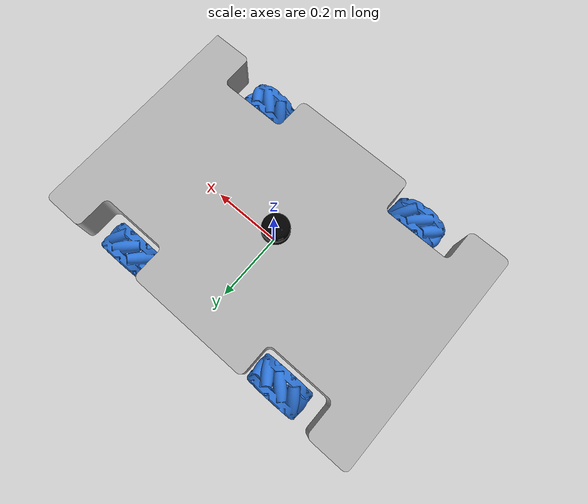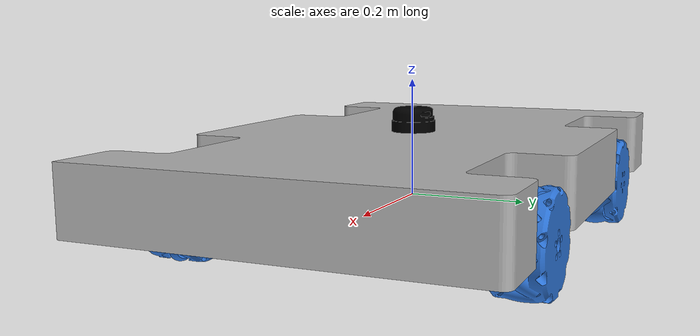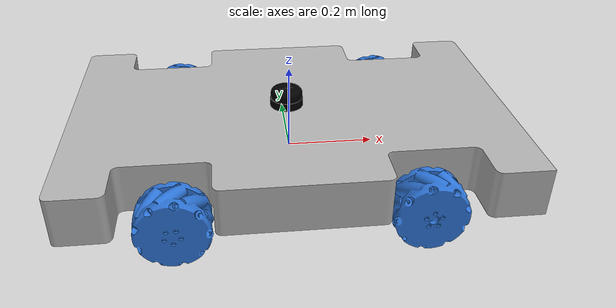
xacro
<?xml version="1.0"?>
<robot name="amr" xmlns:xacro="http://ros.org/wiki/xacro">

    <xacro:include filename="$(find amr_description)/urdf/base.xacro"/>
    <xacro:include filename="$(find amr_description)/urdf/mecanum_wheel.xacro"/>
    <xacro:include filename="$(find amr_description)/urdf/lidar.xacro"/>

    <xacro:property name="base_mass" value="118.02415513468259"/>
    <xacro:property name="wheel_radius" value="0.08"/>
    <xacro:property name="wheel_width" value="0.042"/>
    <xacro:property name="wheel_mass" value="1"/>
    <xacro:property name="PI" value="3.1415926535897931" />

    <xacro:amr_base
        mass="${base_mass}"
        wheel_radius="${wheel_radius}"
        wheel_pos_z="0"
    />

    <xacro:mecanum_wheel_front_left
        radius="${wheel_radius}"
        mass="${wheel_mass}"
        width="${wheel_width}"
        pos_x="0.265"
        pos_y="0.28"
        pos_z="0"
        reflect="${PI/2}"
    />
    <xacro:mecanum_wheel_rear_left
        radius="${wheel_radius}"
        mass="${wheel_mass}"
        width="${wheel_width}"
        pos_x="-0.265"
        pos_y="0.28"
        pos_z="0"
        reflect="${PI/2}"
    />
    <xacro:mecanum_wheel_front_right
        radius="${wheel_radius}"
        mass="${wheel_mass}"
        width="${wheel_width}"
        pos_x="0.265"
        pos_y="-0.28"
        pos_z="0"
        reflect="${PI/2}"
    />
    <xacro:mecanum_wheel_rear_right
        radius="${wheel_radius}"
        mass="${wheel_mass}"
        width="${wheel_width}"
        pos_x="-0.265"
        pos_y="-0.28"
        pos_z="0"
        reflect="${PI/2}"
    />
    <xacro:lidar
        pos_x="0.0"
        pos_y="0.0"
        pos_z="0.0"
    />

</robot>

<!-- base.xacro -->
<robot xmlns:xacro="http://ros.org/wiki/xacro">
    <material name="silver">
        <color rgba="0.7 0.7 0.7 1.0"/>
    </material>
    <xacro:property name="PI" value="3.1415926535897931" />
    <xacro:macro name="amr_base" params="mass wheel_radius wheel_pos_z">
        <link name="base_footprint"/>
        <link name="base_link">
            <visual>
                <origin xyz="0.0 0.0 0.0" rpy="0.0 0.0 ${-PI/2}"/>
                <geometry>
                    <mesh filename="file://$(find amr_description)/meshes/base_link.stl" scale="1 1 1"/>
                </geometry>
                <material name="silver"/>
            </visual>
            <collision>
                <origin xyz="0 0 0" rpy="0 0 0"/>
                <geometry>
                    <mesh filename="file://$(find amr_description)/meshes/base_link.stl" scale="1 1 1"/>
                </geometry>
            </collision>
            <inertial>
                <origin xyz="0.0 0.0 0.10" rpy="0.0 0.0 0.0"/>
                <mass value="${mass}"/>
                <inertia ixx="11.552282" ixy="-0.006658" ixz="0.0" iyy="4.683005" iyz="0.0" izz="15.747905"/>
            </inertial>
        </link>
        <joint name="base_joint" type="fixed">
            <parent link="base_footprint"/>
            <child link="base_link"/>
            <origin xyz="0 0 0" rpy="0 0 0"/>
        </joint>
    </xacro:macro>
</robot>

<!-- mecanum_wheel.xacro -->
<robot xmlns:xacro="http://ros.org/wiki/xacro">
    <xacro:property name="PI" value="3.1415926535897931" />
    <xacro:macro name="mecanum_wheel_front_left" params="radius mass width pos_x pos_y pos_z reflect">
        <link name="front_left_wheel_link">
            <visual>
                <origin xyz="0.0 0.0 0.0" rpy="0.0 0.0 0.0"/>
                <geometry>
                    <mesh filename="file://$(find amr_description)/meshes/Mecanum_Left.stl" scale="0.001 0.001 0.001"/>
                </geometry>
                <material name="blue">
                    <color rgba="0.1764 0.4588 0.8509 1.0"/>
                </material>
            </visual>
            <collision>
                <origin xyz="0 0 0" rpy="${PI/2} 0 ${PI/2}"/>
                <geometry>
                    <cylinder radius="${radius}" length="${width}"/>
                </geometry>
            </collision>
            <inertial>
                <origin xyz="0.0 0.0 0.0" rpy="0.0 0.0 0.0"/>
                <mass value="${mass}"/>
                <inertia ixx="${(2/5) * mass * (radius * radius)}" ixy="0" ixz="0"
                         iyy="${(2/5) * mass * (radius * radius)}" iyz="0"
                         izz="${(2/5) * mass * (radius * radius)}" />
            </inertial>
        </link>
        <joint name="front_left_wheel_joint" type="continuous">
            <axis xyz="0.0 1.0 0.0"/>
            <parent link="base_link"/>
            <child link="front_left_wheel_link"/>
            <origin xyz="${pos_x} ${pos_y} ${pos_z}" rpy="0 0 ${reflect}"/>
        </joint>
    </xacro:macro>
    <xacro:macro name="mecanum_wheel_front_right" params="radius mass width pos_x pos_y pos_z reflect">
        <link name="front_right_wheel_link">
            <visual>
                <origin xyz="0.0 0.0 0.0" rpy="0.0 0.0 0.0"/>
                <geometry>
                    <mesh filename="file://$(find amr_description)/meshes/Mecanum_Right.stl" scale="0.001 0.001 0.001"/>
                </geometry>
                <material name="blue">
                    <color rgba="0.1764 0.4588 0.8509 1.0"/>
                </material>
            </visual>
            <collision>
                <origin xyz="0 0 0" rpy="${PI/2} 0 ${PI/2}"/>
                <geometry>
                    <cylinder radius="${radius}" length="${width}"/>
                </geometry>
            </collision>
            <inertial>
                <origin xyz="0.0 0.0 0.0" rpy="0.0 0.0 0.0"/>
                <mass value="${mass}"/>
                <inertia ixx="${(2/5) * mass * (radius * radius)}" ixy="0" ixz="0"
                         iyy="${(2/5) * mass * (radius * radius)}" iyz="0"
                         izz="${(2/5) * mass * (radius * radius)}" />
            </inertial>
        </link>
        <joint name="front_right_wheel_joint" type="continuous">
            <axis xyz="0.0 1.0 0.0"/>
            <parent link="base_link"/>
            <child link="front_right_wheel_link"/>
            <origin xyz="${pos_x} ${pos_y} ${pos_z}" rpy="0 0 ${reflect}"/>
        </joint>
    </xacro:macro>
    <xacro:macro name="mecanum_wheel_rear_right" params="radius mass width pos_x pos_y pos_z reflect">
        <link name="rear_right_wheel_link">
            <visual>
                <origin xyz="0.0 0.0 0.0" rpy="0.0 0.0 0.0"/>
                <geometry>
                    <mesh filename="file://$(find amr_description)/meshes/Mecanum_Left.stl" scale="0.001 0.001 0.001"/>
                </geometry>
                <material name="blue">
                    <color rgba="0.1764 0.4588 0.8509 1.0"/>
                </material>
            </visual>
            <collision>
                <origin xyz="0 0 0" rpy="${PI/2} 0 ${PI/2}"/>
                <geometry>
                    <cylinder radius="${radius}" length="${width}"/>
                </geometry>
            </collision>
            <inertial>
                <origin xyz="0.0 0.0 0.0" rpy="0.0 0.0 0.0"/>
                <mass value="${mass}"/>
                <inertia ixx="${(2/5) * mass * (radius * radius)}" ixy="0" ixz="0"
                         iyy="${(2/5) * mass * (radius * radius)}" iyz="0"
                         izz="${(2/5) * mass * (radius * radius)}" />
            </inertial>
        </link>
        <joint name="rear_right_wheel_joint" type="continuous">
            <axis xyz="0.0 1.0 0.0"/>
            <parent link="base_link"/>
            <child link="rear_right_wheel_link"/>
            <origin xyz="${pos_x} ${pos_y} ${pos_z}" rpy="0 0 ${reflect}"/>
        </joint>
    </xacro:macro>
    <xacro:macro name="mecanum_wheel_rear_left" params="radius mass width pos_x pos_y pos_z reflect">
        <link name="rear_left_wheel_link">
            <visual>
                <origin xyz="0.0 0.0 0.0" rpy="0.0 0.0 0.0"/>
                <geometry>
                    <mesh filename="file://$(find amr_description)/meshes/Mecanum_Right.stl" scale="0.001 0.001 0.001"/>
                </geometry>
                <material name="blue">
                    <color rgba="0.1764 0.4588 0.8509 1.0"/>
                </material>
            </visual>
            <collision>
                <origin xyz="0 0 0" rpy="${PI/2} 0 ${PI/2}"/>
                <geometry>
                    <cylinder radius="${radius}" length="${width}"/>
                </geometry>
            </collision>
            <inertial>
                <origin xyz="0.0 0.0 0.0" rpy="0.0 0.0 0.0"/>
                <mass value="${mass}"/>
                <inertia ixx="${(2/5) * mass * (radius * radius)}" ixy="0" ixz="0"
                         iyy="${(2/5) * mass * (radius * radius)}" iyz="0"
                         izz="${(2/5) * mass * (radius * radius)}" />
            </inertial>
        </link>
        <joint name="rear_left_wheel_joint" type="continuous">
            <axis xyz="0.0 1.0 0.0"/>
            <parent link="base_link"/>
            <child link="rear_left_wheel_link"/>
            <origin xyz="${pos_x} ${pos_y} ${pos_z}" rpy="0 0 ${reflect}"/>
        </joint>
    </xacro:macro>
</robot>

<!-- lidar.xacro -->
<robot xmlns:xacro="http://ros.org/wiki/xacro">

<xacro:property name="M_PI" value="3.1415926535897931" />
    <xacro:macro name="lidar" params="pos_x pos_y pos_z">
        <link name="lidar_link">
            <visual>
                <origin xyz="0.0 0.0 0.0" rpy="0.0 0.0 0.0"/>
                <geometry>
                    <mesh filename="file://$(find amr_description)/meshes/rpi_lidar_1.stl" scale="1 1 1"/>
                </geometry>
                <material name="black">
                    <color rgba="0 0 0 1.0"/>
                </material>
            </visual>
            <collision>
                <origin xyz="0.0 0.0 0.0" rpy="0.0 0.0 0.0"/>
                <geometry>
                    <mesh filename="file://$(find amr_description)/meshes/rpi_lidar_1.stl" scale="1 1 1"/>
                </geometry>
            </collision>
            <inertial>
                <origin xyz="0 0 0" rpy="0 0 0"/>
                <mass value="0.1"/>
                <inertia ixx="${(2/5) * 0.1 * (0.0375 * 0.0375)}" ixy="0" ixz="0"
                         iyy="${(2/5) * 0.1 * (0.0375 * 0.0375)}" iyz="0"
                         izz="${(2/5) * 0.1 * (0.0375 * 0.0375)}" />
              </inertial>
        </link>
        <joint name="lidar_joint" type="fixed">
            <parent link="base_link"/>
            <child link="lidar_link"/>
            <origin xyz="0.0 0.0 0.125" rpy="0 0 0"/>
        </joint>
    </xacro:macro>
</robot>
